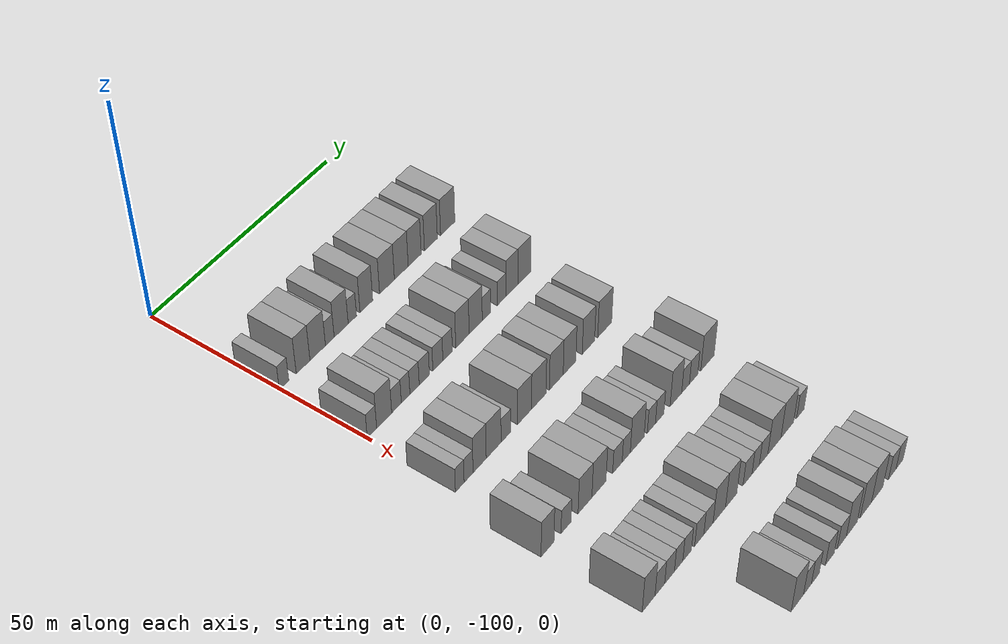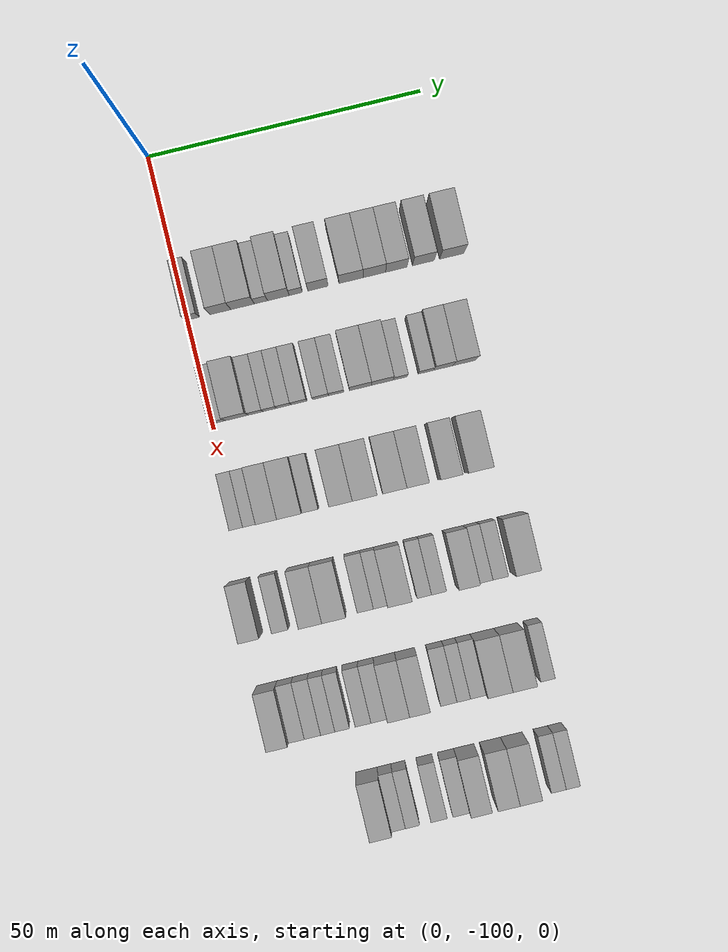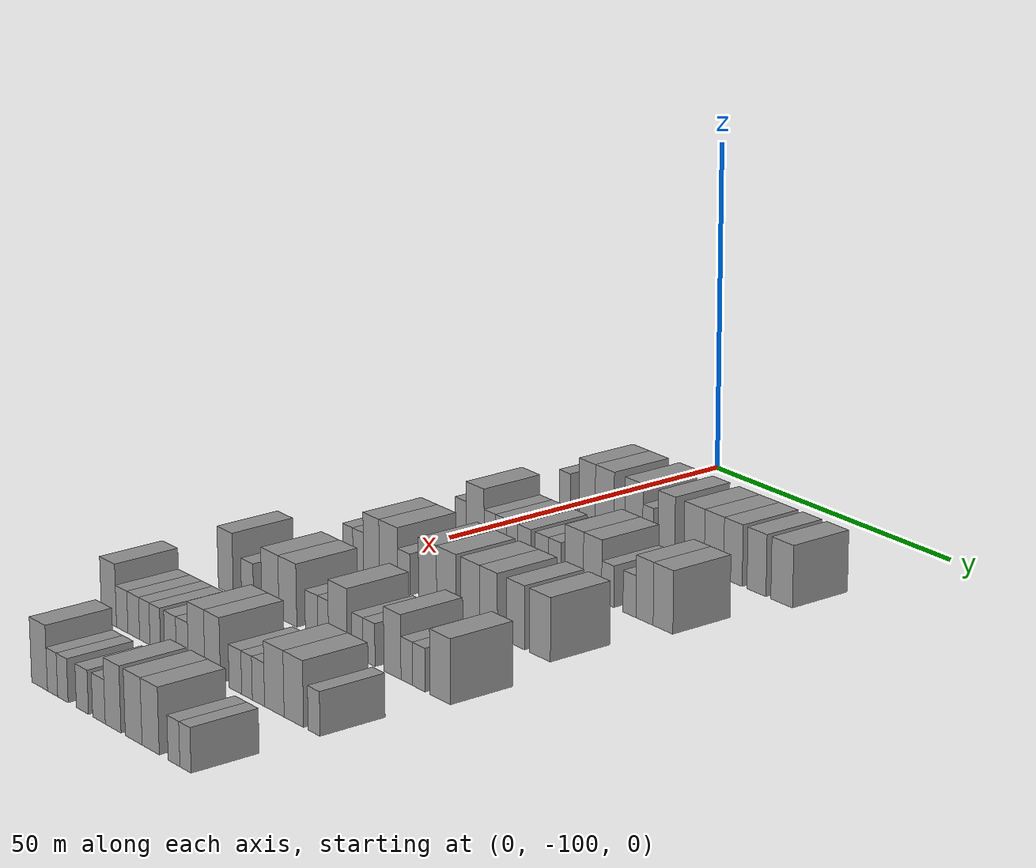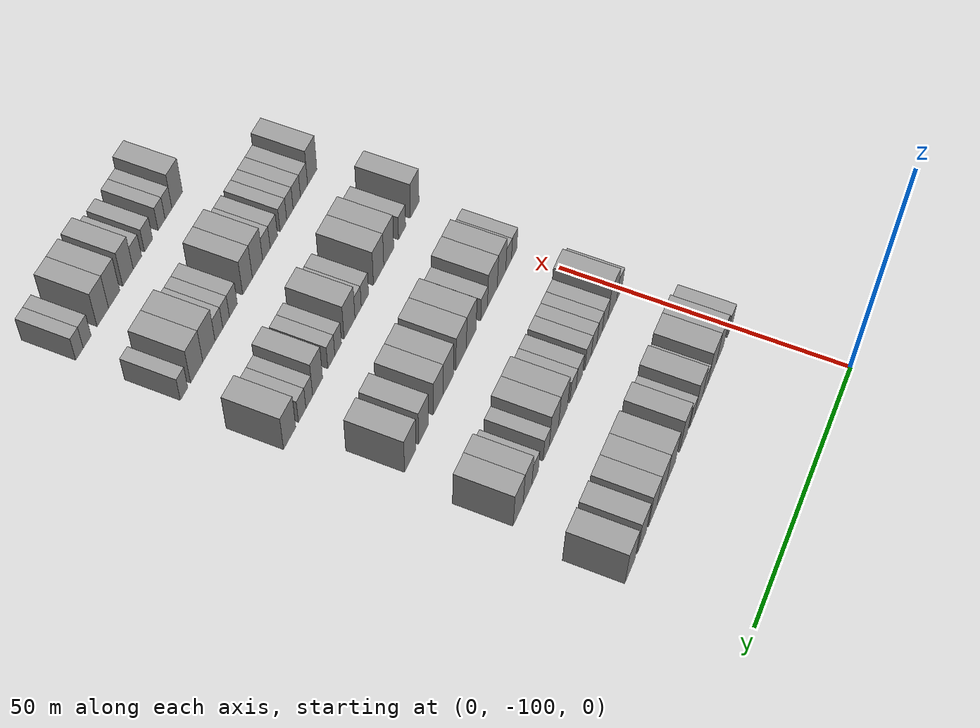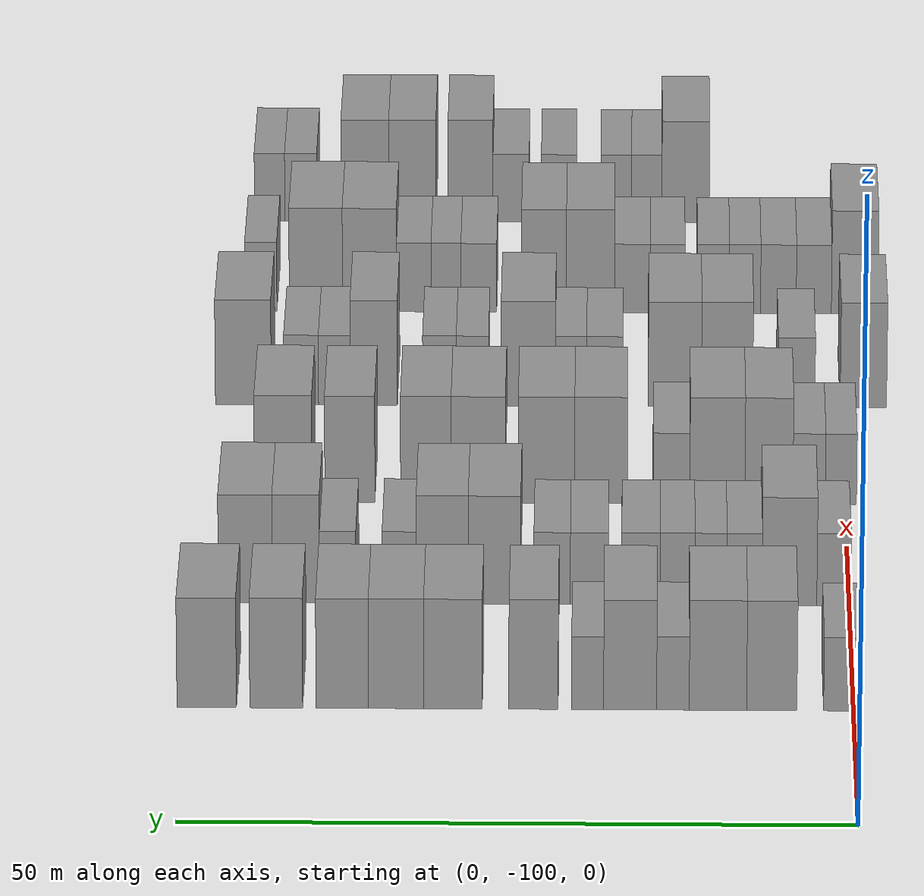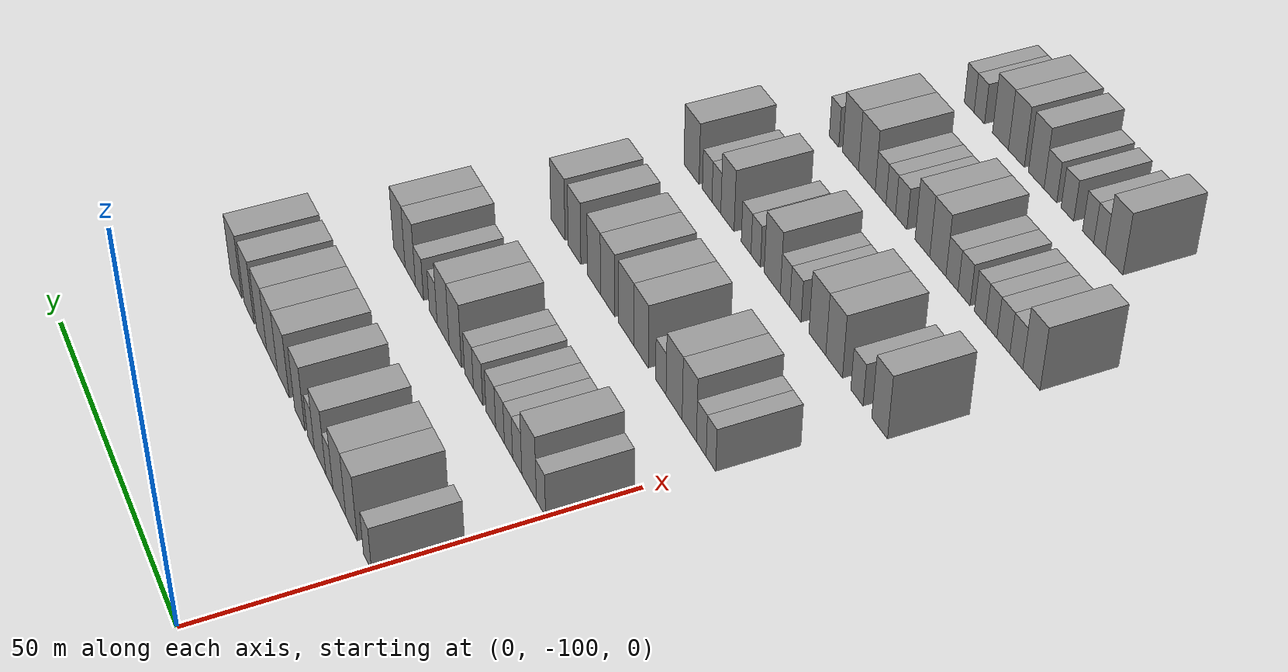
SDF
<sdf version="1.6">
 <world name="default">
  <model name="building_63">
   <static>1</static>
   <pose>25.0000 -99.0015 0 0.000000 0.000000 0.000000</pose>
   <link name="link">
    <pose>0 0 3.00 0 0 0</pose>
    <collision name="collision"><geometry><box><size>10.0000 2.5620 6.0000</size></box></geometry></collision>
    <visual name="visual">
     <cast_shadows>0</cast_shadows>
     <geometry><box><size>10.0000 2.5620 6.0000</size></box></geometry>
     <material>
      <script>
       <uri>model://grey_wall/materials/scripts</uri>
       <uri>model://grey_wall/materials/textures</uri>
       <name>vrc/grey_wall</name>
      </script>
     </material>
    </visual>
   </link>
  </model>
  <model name="building_64">
   <static>1</static>
   <pose>25.0000 -93.8390 0 0.000000 0.000000 0.000000</pose>
   <link name="link">
    <pose>0 0 4.50 0 0 0</pose>
    <collision name="collision"><geometry><box><size>10.0000 3.7630 9.0000</size></box></geometry></collision>
    <visual name="visual">
     <cast_shadows>0</cast_shadows>
     <geometry><box><size>10.0000 3.7630 9.0000</size></box></geometry>
     <material>
      <script>
       <uri>model://grey_wall/materials/scripts</uri>
       <uri>model://grey_wall/materials/textures</uri>
       <name>vrc/grey_wall</name>
      </script>
     </material>
    </visual>
   </link>
  </model>
  <model name="building_65">
   <static>1</static>
   <pose>25.0000 -89.8114 0 0.000000 0.000000 0.000000</pose>
   <link name="link">
    <pose>0 0 4.50 0 0 0</pose>
    <collision name="collision"><geometry><box><size>10.0000 4.2922 9.0000</size></box></geometry></collision>
    <visual name="visual">
     <cast_shadows>0</cast_shadows>
     <geometry><box><size>10.0000 4.2922 9.0000</size></box></geometry>
     <material>
      <script>
       <uri>model://grey_wall/materials/scripts</uri>
       <uri>model://grey_wall/materials/textures</uri>
       <name>vrc/grey_wall</name>
      </script>
     </material>
    </visual>
   </link>
  </model>
  <model name="building_66">
   <static>1</static>
   <pose>25.0000 -86.4455 0 0.000000 0.000000 0.000000</pose>
   <link name="link">
    <pose>0 0 3.00 0 0 0</pose>
    <collision name="collision"><geometry><box><size>10.0000 2.4396 6.0000</size></box></geometry></collision>
    <visual name="visual">
     <cast_shadows>0</cast_shadows>
     <geometry><box><size>10.0000 2.4396 6.0000</size></box></geometry>
     <material>
      <script>
       <uri>model://grey_wall/materials/scripts</uri>
       <uri>model://grey_wall/materials/textures</uri>
       <name>vrc/grey_wall</name>
      </script>
     </material>
    </visual>
   </link>
  </model>
  <model name="building_67">
   <static>1</static>
   <pose>25.0000 -83.2430 0 0.000000 0.000000 0.000000</pose>
   <link name="link">
    <pose>0 0 4.50 0 0 0</pose>
    <collision name="collision"><geometry><box><size>10.0000 3.9654 9.0000</size></box></geometry></collision>
    <visual name="visual">
     <cast_shadows>0</cast_shadows>
     <geometry><box><size>10.0000 3.9654 9.0000</size></box></geometry>
     <material>
      <script>
       <uri>model://grey_wall/materials/scripts</uri>
       <uri>model://grey_wall/materials/textures</uri>
       <name>vrc/grey_wall</name>
      </script>
     </material>
    </visual>
   </link>
  </model>
  <model name="building_68">
   <static>1</static>
   <pose>25.0000 -80.0603 0 0.000000 0.000000 0.000000</pose>
   <link name="link">
    <pose>0 0 3.00 0 0 0</pose>
    <collision name="collision"><geometry><box><size>10.0000 2.4002 6.0000</size></box></geometry></collision>
    <visual name="visual">
     <cast_shadows>0</cast_shadows>
     <geometry><box><size>10.0000 2.4002 6.0000</size></box></geometry>
     <material>
      <script>
       <uri>model://grey_wall/materials/scripts</uri>
       <uri>model://grey_wall/materials/textures</uri>
       <name>vrc/grey_wall</name>
      </script>
     </material>
    </visual>
   </link>
  </model>
  <model name="building_69">
   <static>1</static>
   <pose>25.0000 -76.0189 0 0.000000 0.000000 0.000000</pose>
   <link name="link">
    <pose>0 0 4.50 0 0 0</pose>
    <collision name="collision"><geometry><box><size>10.0000 3.6826 9.0000</size></box></geometry></collision>
    <visual name="visual">
     <cast_shadows>0</cast_shadows>
     <geometry><box><size>10.0000 3.6826 9.0000</size></box></geometry>
     <material>
      <script>
       <uri>model://grey_wall/materials/scripts</uri>
       <uri>model://grey_wall/materials/textures</uri>
       <name>vrc/grey_wall</name>
      </script>
     </material>
    </visual>
   </link>
  </model>
  <model name="building_70">
   <static>1</static>
   <pose>25.0000 -69.9888 0 0.000000 0.000000 0.000000</pose>
   <link name="link">
    <pose>0 0 4.50 0 0 0</pose>
    <collision name="collision"><geometry><box><size>10.0000 4.3776 9.0000</size></box></geometry></collision>
    <visual name="visual">
     <cast_shadows>0</cast_shadows>
     <geometry><box><size>10.0000 4.3776 9.0000</size></box></geometry>
     <material>
      <script>
       <uri>model://grey_wall/materials/scripts</uri>
       <uri>model://grey_wall/materials/textures</uri>
       <name>vrc/grey_wall</name>
      </script>
     </material>
    </visual>
   </link>
  </model>
  <model name="building_71">
   <static>1</static>
   <pose>25.0000 -65.7363 0 0.000000 0.000000 0.000000</pose>
   <link name="link">
    <pose>0 0 4.50 0 0 0</pose>
    <collision name="collision"><geometry><box><size>10.0000 4.1273 9.0000</size></box></geometry></collision>
    <visual name="visual">
     <cast_shadows>0</cast_shadows>
     <geometry><box><size>10.0000 4.1273 9.0000</size></box></geometry>
     <material>
      <script>
       <uri>model://grey_wall/materials/scripts</uri>
       <uri>model://grey_wall/materials/textures</uri>
       <name>vrc/grey_wall</name>
      </script>
     </material>
    </visual>
   </link>
  </model>
  <model name="building_72">
   <static>1</static>
   <pose>25.0000 -61.7075 0 0.000000 0.000000 0.000000</pose>
   <link name="link">
    <pose>0 0 4.50 0 0 0</pose>
    <collision name="collision"><geometry><box><size>10.0000 3.9303 9.0000</size></box></geometry></collision>
    <visual name="visual">
     <cast_shadows>0</cast_shadows>
     <geometry><box><size>10.0000 3.9303 9.0000</size></box></geometry>
     <material>
      <script>
       <uri>model://grey_wall/materials/scripts</uri>
       <uri>model://grey_wall/materials/textures</uri>
       <name>vrc/grey_wall</name>
      </script>
     </material>
    </visual>
   </link>
  </model>
  <model name="building_73">
   <static>1</static>
   <pose>25.0000 -56.7622 0 0.000000 0.000000 0.000000</pose>
   <link name="link">
    <pose>0 0 4.50 0 0 0</pose>
    <collision name="collision"><geometry><box><size>10.0000 3.9604 9.0000</size></box></geometry></collision>
    <visual name="visual">
     <cast_shadows>0</cast_shadows>
     <geometry><box><size>10.0000 3.9604 9.0000</size></box></geometry>
     <material>
      <script>
       <uri>model://grey_wall/materials/scripts</uri>
       <uri>model://grey_wall/materials/textures</uri>
       <name>vrc/grey_wall</name>
      </script>
     </material>
    </visual>
   </link>
  </model>
  <model name="building_74">
   <static>1</static>
   <pose>25.0000 -51.5574 0 0.000000 0.000000 0.000000</pose>
   <link name="link">
    <pose>0 0 4.50 0 0 0</pose>
    <collision name="collision"><geometry><box><size>10.0000 4.4492 9.0000</size></box></geometry></collision>
    <visual name="visual">
     <cast_shadows>0</cast_shadows>
     <geometry><box><size>10.0000 4.4492 9.0000</size></box></geometry>
     <material>
      <script>
       <uri>model://grey_wall/materials/scripts</uri>
       <uri>model://grey_wall/materials/textures</uri>
       <name>vrc/grey_wall</name>
      </script>
     </material>
    </visual>
   </link>
  </model>
  <model name="building_239">
   <static>1</static>
   <pose>44.0000 -98.7600 0 0.000000 0.000000 0.000000</pose>
   <link name="link">
    <pose>0 0 3.00 0 0 0</pose>
    <collision name="collision"><geometry><box><size>10.0000 2.5803 6.0000</size></box></geometry></collision>
    <visual name="visual">
     <cast_shadows>0</cast_shadows>
     <geometry><box><size>10.0000 2.5803 6.0000</size></box></geometry>
     <material>
      <script>
       <uri>model://grey_wall/materials/scripts</uri>
       <uri>model://grey_wall/materials/textures</uri>
       <name>vrc/grey_wall</name>
      </script>
     </material>
    </visual>
   </link>
  </model>
  <model name="building_240">
   <static>1</static>
   <pose>44.0000 -95.3832 0 0.000000 0.000000 0.000000</pose>
   <link name="link">
    <pose>0 0 4.50 0 0 0</pose>
    <collision name="collision"><geometry><box><size>10.0000 4.1734 9.0000</size></box></geometry></collision>
    <visual name="visual">
     <cast_shadows>0</cast_shadows>
     <geometry><box><size>10.0000 4.1734 9.0000</size></box></geometry>
     <material>
      <script>
       <uri>model://grey_wall/materials/scripts</uri>
       <uri>model://grey_wall/materials/textures</uri>
       <name>vrc/grey_wall</name>
      </script>
     </material>
    </visual>
   </link>
  </model>
  <model name="building_241">
   <static>1</static>
   <pose>44.0000 -91.9463 0 0.000000 0.000000 0.000000</pose>
   <link name="link">
    <pose>0 0 3.00 0 0 0</pose>
    <collision name="collision"><geometry><box><size>10.0000 2.7004 6.0000</size></box></geometry></collision>
    <visual name="visual">
     <cast_shadows>0</cast_shadows>
     <geometry><box><size>10.0000 2.7004 6.0000</size></box></geometry>
     <material>
      <script>
       <uri>model://grey_wall/materials/scripts</uri>
       <uri>model://grey_wall/materials/textures</uri>
       <name>vrc/grey_wall</name>
      </script>
     </material>
    </visual>
   </link>
  </model>
  <model name="building_242">
   <static>1</static>
   <pose>44.0000 -89.3779 0 0.000000 0.000000 0.000000</pose>
   <link name="link">
    <pose>0 0 3.00 0 0 0</pose>
    <collision name="collision"><geometry><box><size>10.0000 2.4364 6.0000</size></box></geometry></collision>
    <visual name="visual">
     <cast_shadows>0</cast_shadows>
     <geometry><box><size>10.0000 2.4364 6.0000</size></box></geometry>
     <material>
      <script>
       <uri>model://grey_wall/materials/scripts</uri>
       <uri>model://grey_wall/materials/textures</uri>
       <name>vrc/grey_wall</name>
      </script>
     </material>
    </visual>
   </link>
  </model>
  <model name="building_243">
   <static>1</static>
   <pose>44.0000 -86.8369 0 0.000000 0.000000 0.000000</pose>
   <link name="link">
    <pose>0 0 3.00 0 0 0</pose>
    <collision name="collision"><geometry><box><size>10.0000 2.6456 6.0000</size></box></geometry></collision>
    <visual name="visual">
     <cast_shadows>0</cast_shadows>
     <geometry><box><size>10.0000 2.6456 6.0000</size></box></geometry>
     <material>
      <script>
       <uri>model://grey_wall/materials/scripts</uri>
       <uri>model://grey_wall/materials/textures</uri>
       <name>vrc/grey_wall</name>
      </script>
     </material>
    </visual>
   </link>
  </model>
  <model name="building_244">
   <static>1</static>
   <pose>44.0000 -84.0480 0 0.000000 0.000000 0.000000</pose>
   <link name="link">
    <pose>0 0 3.00 0 0 0</pose>
    <collision name="collision"><geometry><box><size>10.0000 2.9322 6.0000</size></box></geometry></collision>
    <visual name="visual">
     <cast_shadows>0</cast_shadows>
     <geometry><box><size>10.0000 2.9322 6.0000</size></box></geometry>
     <material>
      <script>
       <uri>model://grey_wall/materials/scripts</uri>
       <uri>model://grey_wall/materials/textures</uri>
       <name>vrc/grey_wall</name>
      </script>
     </material>
    </visual>
   </link>
  </model>
  <model name="building_245">
   <static>1</static>
   <pose>44.0000 -80.1225 0 0.000000 0.000000 0.000000</pose>
   <link name="link">
    <pose>0 0 3.00 0 0 0</pose>
    <collision name="collision"><geometry><box><size>10.0000 2.9187 6.0000</size></box></geometry></collision>
    <visual name="visual">
     <cast_shadows>0</cast_shadows>
     <geometry><box><size>10.0000 2.9187 6.0000</size></box></geometry>
     <material>
      <script>
       <uri>model://grey_wall/materials/scripts</uri>
       <uri>model://grey_wall/materials/textures</uri>
       <name>vrc/grey_wall</name>
      </script>
     </material>
    </visual>
   </link>
  </model>
  <model name="building_246">
   <static>1</static>
   <pose>44.0000 -77.2714 0 0.000000 0.000000 0.000000</pose>
   <link name="link">
    <pose>0 0 3.00 0 0 0</pose>
    <collision name="collision"><geometry><box><size>10.0000 2.7835 6.0000</size></box></geometry></collision>
    <visual name="visual">
     <cast_shadows>0</cast_shadows>
     <geometry><box><size>10.0000 2.7835 6.0000</size></box></geometry>
     <material>
      <script>
       <uri>model://grey_wall/materials/scripts</uri>
       <uri>model://grey_wall/materials/textures</uri>
       <name>vrc/grey_wall</name>
      </script>
     </material>
    </visual>
   </link>
  </model>
  <model name="building_247">
   <static>1</static>
   <pose>44.0000 -72.8802 0 0.000000 0.000000 0.000000</pose>
   <link name="link">
    <pose>0 0 4.50 0 0 0</pose>
    <collision name="collision"><geometry><box><size>10.0000 3.9989 9.0000</size></box></geometry></collision>
    <visual name="visual">
     <cast_shadows>0</cast_shadows>
     <geometry><box><size>10.0000 3.9989 9.0000</size></box></geometry>
     <material>
      <script>
       <uri>model://grey_wall/materials/scripts</uri>
       <uri>model://grey_wall/materials/textures</uri>
       <name>vrc/grey_wall</name>
      </script>
     </material>
    </visual>
   </link>
  </model>
  <model name="building_248">
   <static>1</static>
   <pose>44.0000 -68.8978 0 0.000000 0.000000 0.000000</pose>
   <link name="link">
    <pose>0 0 4.50 0 0 0</pose>
    <collision name="collision"><geometry><box><size>10.0000 3.9660 9.0000</size></box></geometry></collision>
    <visual name="visual">
     <cast_shadows>0</cast_shadows>
     <geometry><box><size>10.0000 3.9660 9.0000</size></box></geometry>
     <material>
      <script>
       <uri>model://grey_wall/materials/scripts</uri>
       <uri>model://grey_wall/materials/textures</uri>
       <name>vrc/grey_wall</name>
      </script>
     </material>
    </visual>
   </link>
  </model>
  <model name="building_249">
   <static>1</static>
   <pose>44.0000 -65.6132 0 0.000000 0.000000 0.000000</pose>
   <link name="link">
    <pose>0 0 3.00 0 0 0</pose>
    <collision name="collision"><geometry><box><size>10.0000 2.6032 6.0000</size></box></geometry></collision>
    <visual name="visual">
     <cast_shadows>0</cast_shadows>
     <geometry><box><size>10.0000 2.6032 6.0000</size></box></geometry>
     <material>
      <script>
       <uri>model://grey_wall/materials/scripts</uri>
       <uri>model://grey_wall/materials/textures</uri>
       <name>vrc/grey_wall</name>
      </script>
     </material>
    </visual>
   </link>
  </model>
  <model name="building_250">
   <static>1</static>
   <pose>44.0000 -60.9250 0 0.000000 0.000000 0.000000</pose>
   <link name="link">
    <pose>0 0 3.00 0 0 0</pose>
    <collision name="collision"><geometry><box><size>10.0000 2.7731 6.0000</size></box></geometry></collision>
    <visual name="visual">
     <cast_shadows>0</cast_shadows>
     <geometry><box><size>10.0000 2.7731 6.0000</size></box></geometry>
     <material>
      <script>
       <uri>model://grey_wall/materials/scripts</uri>
       <uri>model://grey_wall/materials/textures</uri>
       <name>vrc/grey_wall</name>
      </script>
     </material>
    </visual>
   </link>
  </model>
  <model name="building_251">
   <static>1</static>
   <pose>44.0000 -57.7348 0 0.000000 0.000000 0.000000</pose>
   <link name="link">
    <pose>0 0 4.50 0 0 0</pose>
    <collision name="collision"><geometry><box><size>10.0000 3.6072 9.0000</size></box></geometry></collision>
    <visual name="visual">
     <cast_shadows>0</cast_shadows>
     <geometry><box><size>10.0000 3.6072 9.0000</size></box></geometry>
     <material>
      <script>
       <uri>model://grey_wall/materials/scripts</uri>
       <uri>model://grey_wall/materials/textures</uri>
       <name>vrc/grey_wall</name>
      </script>
     </material>
    </visual>
   </link>
  </model>
  <model name="building_252">
   <static>1</static>
   <pose>44.0000 -53.8729 0 0.000000 0.000000 0.000000</pose>
   <link name="link">
    <pose>0 0 4.50 0 0 0</pose>
    <collision name="collision"><geometry><box><size>10.0000 4.1167 9.0000</size></box></geometry></collision>
    <visual name="visual">
     <cast_shadows>0</cast_shadows>
     <geometry><box><size>10.0000 4.1167 9.0000</size></box></geometry>
     <material>
      <script>
       <uri>model://grey_wall/materials/scripts</uri>
       <uri>model://grey_wall/materials/textures</uri>
       <name>vrc/grey_wall</name>
      </script>
     </material>
    </visual>
   </link>
  </model>
  <model name="building_420">
   <static>1</static>
   <pose>63.0000 -99.6069 0 0.000000 0.000000 0.000000</pose>
   <link name="link">
    <pose>0 0 3.00 0 0 0</pose>
    <collision name="collision"><geometry><box><size>10.0000 2.4198 6.0000</size></box></geometry></collision>
    <visual name="visual">
     <cast_shadows>0</cast_shadows>
     <geometry><box><size>10.0000 2.4198 6.0000</size></box></geometry>
     <material>
      <script>
       <uri>model://grey_wall/materials/scripts</uri>
       <uri>model://grey_wall/materials/textures</uri>
       <name>vrc/grey_wall</name>
      </script>
     </material>
    </visual>
   </link>
  </model>
  <model name="building_421">
   <static>1</static>
   <pose>63.0000 -97.1346 0 0.000000 0.000000 0.000000</pose>
   <link name="link">
    <pose>0 0 3.00 0 0 0</pose>
    <collision name="collision"><geometry><box><size>10.0000 2.5248 6.0000</size></box></geometry></collision>
    <visual name="visual">
     <cast_shadows>0</cast_shadows>
     <geometry><box><size>10.0000 2.5248 6.0000</size></box></geometry>
     <material>
      <script>
       <uri>model://grey_wall/materials/scripts</uri>
       <uri>model://grey_wall/materials/textures</uri>
       <name>vrc/grey_wall</name>
      </script>
     </material>
    </visual>
   </link>
  </model>
  <model name="building_422">
   <static>1</static>
   <pose>63.0000 -94.0035 0 0.000000 0.000000 0.000000</pose>
   <link name="link">
    <pose>0 0 4.50 0 0 0</pose>
    <collision name="collision"><geometry><box><size>10.0000 3.7374 9.0000</size></box></geometry></collision>
    <visual name="visual">
     <cast_shadows>0</cast_shadows>
     <geometry><box><size>10.0000 3.7374 9.0000</size></box></geometry>
     <material>
      <script>
       <uri>model://grey_wall/materials/scripts</uri>
       <uri>model://grey_wall/materials/textures</uri>
       <name>vrc/grey_wall</name>
      </script>
     </material>
    </visual>
   </link>
  </model>
  <model name="building_423">
   <static>1</static>
   <pose>63.0000 -89.9951 0 0.000000 0.000000 0.000000</pose>
   <link name="link">
    <pose>0 0 4.50 0 0 0</pose>
    <collision name="collision"><geometry><box><size>10.0000 4.2793 9.0000</size></box></geometry></collision>
    <visual name="visual">
     <cast_shadows>0</cast_shadows>
     <geometry><box><size>10.0000 4.2793 9.0000</size></box></geometry>
     <material>
      <script>
       <uri>model://grey_wall/materials/scripts</uri>
       <uri>model://grey_wall/materials/textures</uri>
       <name>vrc/grey_wall</name>
      </script>
     </material>
    </visual>
   </link>
  </model>
  <model name="building_424">
   <static>1</static>
   <pose>63.0000 -86.4323 0 0.000000 0.000000 0.000000</pose>
   <link name="link">
    <pose>0 0 3.00 0 0 0</pose>
    <collision name="collision"><geometry><box><size>10.0000 2.8464 6.0000</size></box></geometry></collision>
    <visual name="visual">
     <cast_shadows>0</cast_shadows>
     <geometry><box><size>10.0000 2.8464 6.0000</size></box></geometry>
     <material>
      <script>
       <uri>model://grey_wall/materials/scripts</uri>
       <uri>model://grey_wall/materials/textures</uri>
       <name>vrc/grey_wall</name>
      </script>
     </material>
    </visual>
   </link>
  </model>
  <model name="building_425">
   <static>1</static>
   <pose>63.0000 -80.9505 0 0.000000 0.000000 0.000000</pose>
   <link name="link">
    <pose>0 0 4.50 0 0 0</pose>
    <collision name="collision"><geometry><box><size>10.0000 4.1171 9.0000</size></box></geometry></collision>
    <visual name="visual">
     <cast_shadows>0</cast_shadows>
     <geometry><box><size>10.0000 4.1171 9.0000</size></box></geometry>
     <material>
      <script>
       <uri>model://grey_wall/materials/scripts</uri>
       <uri>model://grey_wall/materials/textures</uri>
       <name>vrc/grey_wall</name>
      </script>
     </material>
    </visual>
   </link>
  </model>
  <model name="building_426">
   <static>1</static>
   <pose>63.0000 -76.7023 0 0.000000 0.000000 0.000000</pose>
   <link name="link">
    <pose>0 0 4.50 0 0 0</pose>
    <collision name="collision"><geometry><box><size>10.0000 4.3794 9.0000</size></box></geometry></collision>
    <visual name="visual">
     <cast_shadows>0</cast_shadows>
     <geometry><box><size>10.0000 4.3794 9.0000</size></box></geometry>
     <material>
      <script>
       <uri>model://grey_wall/materials/scripts</uri>
       <uri>model://grey_wall/materials/textures</uri>
       <name>vrc/grey_wall</name>
      </script>
     </material>
    </visual>
   </link>
  </model>
  <model name="building_427">
   <static>1</static>
   <pose>63.0000 -71.4028 0 0.000000 0.000000 0.000000</pose>
   <link name="link">
    <pose>0 0 4.50 0 0 0</pose>
    <collision name="collision"><geometry><box><size>10.0000 4.2195 9.0000</size></box></geometry></collision>
    <visual name="visual">
     <cast_shadows>0</cast_shadows>
     <geometry><box><size>10.0000 4.2195 9.0000</size></box></geometry>
     <material>
      <script>
       <uri>model://grey_wall/materials/scripts</uri>
       <uri>model://grey_wall/materials/textures</uri>
       <name>vrc/grey_wall</name>
      </script>
     </material>
    </visual>
   </link>
  </model>
  <model name="building_428">
   <static>1</static>
   <pose>63.0000 -67.3273 0 0.000000 0.000000 0.000000</pose>
   <link name="link">
    <pose>0 0 4.50 0 0 0</pose>
    <collision name="collision"><geometry><box><size>10.0000 3.9316 9.0000</size></box></geometry></collision>
    <visual name="visual">
     <cast_shadows>0</cast_shadows>
     <geometry><box><size>10.0000 3.9316 9.0000</size></box></geometry>
     <material>
      <script>
       <uri>model://grey_wall/materials/scripts</uri>
       <uri>model://grey_wall/materials/textures</uri>
       <name>vrc/grey_wall</name>
      </script>
     </material>
    </visual>
   </link>
  </model>
  <model name="building_429">
   <static>1</static>
   <pose>63.0000 -61.4141 0 0.000000 0.000000 0.000000</pose>
   <link name="link">
    <pose>0 0 4.50 0 0 0</pose>
    <collision name="collision"><geometry><box><size>10.0000 3.8948 9.0000</size></box></geometry></collision>
    <visual name="visual">
     <cast_shadows>0</cast_shadows>
     <geometry><box><size>10.0000 3.8948 9.0000</size></box></geometry>
     <material>
      <script>
       <uri>model://grey_wall/materials/scripts</uri>
       <uri>model://grey_wall/materials/textures</uri>
       <name>vrc/grey_wall</name>
      </script>
     </material>
    </visual>
   </link>
  </model>
  <model name="building_430">
   <static>1</static>
   <pose>63.0000 -56.2300 0 0.000000 0.000000 0.000000</pose>
   <link name="link">
    <pose>0 0 4.50 0 0 0</pose>
    <collision name="collision"><geometry><box><size>10.0000 4.4734 9.0000</size></box></geometry></collision>
    <visual name="visual">
     <cast_shadows>0</cast_shadows>
     <geometry><box><size>10.0000 4.4734 9.0000</size></box></geometry>
     <material>
      <script>
       <uri>model://grey_wall/materials/scripts</uri>
       <uri>model://grey_wall/materials/textures</uri>
       <name>vrc/grey_wall</name>
      </script>
     </material>
    </visual>
   </link>
  </model>
  <model name="building_586">
   <static>1</static>
   <pose>82.0000 -101.6894 0 0.000000 0.000000 0.000000</pose>
   <link name="link">
    <pose>0 0 4.50 0 0 0</pose>
    <collision name="collision"><geometry><box><size>10.0000 3.6727 9.0000</size></box></geometry></collision>
    <visual name="visual">
     <cast_shadows>0</cast_shadows>
     <geometry><box><size>10.0000 3.6727 9.0000</size></box></geometry>
     <material>
      <script>
       <uri>model://grey_wall/materials/scripts</uri>
       <uri>model://grey_wall/materials/textures</uri>
       <name>vrc/grey_wall</name>
      </script>
     </material>
    </visual>
   </link>
  </model>
  <model name="building_587">
   <static>1</static>
   <pose>82.0000 -96.3872 0 0.000000 0.000000 0.000000</pose>
   <link name="link">
    <pose>0 0 3.00 0 0 0</pose>
    <collision name="collision"><geometry><box><size>10.0000 2.9318 6.0000</size></box></geometry></collision>
    <visual name="visual">
     <cast_shadows>0</cast_shadows>
     <geometry><box><size>10.0000 2.9318 6.0000</size></box></geometry>
     <material>
      <script>
       <uri>model://grey_wall/materials/scripts</uri>
       <uri>model://grey_wall/materials/textures</uri>
       <name>vrc/grey_wall</name>
      </script>
     </material>
    </visual>
   </link>
  </model>
  <model name="building_588">
   <static>1</static>
   <pose>82.0000 -90.8822 0 0.000000 0.000000 0.000000</pose>
   <link name="link">
    <pose>0 0 4.50 0 0 0</pose>
    <collision name="collision"><geometry><box><size>10.0000 4.0781 9.0000</size></box></geometry></collision>
    <visual name="visual">
     <cast_shadows>0</cast_shadows>
     <geometry><box><size>10.0000 4.0781 9.0000</size></box></geometry>
     <material>
      <script>
       <uri>model://grey_wall/materials/scripts</uri>
       <uri>model://grey_wall/materials/textures</uri>
       <name>vrc/grey_wall</name>
      </script>
     </material>
    </visual>
   </link>
  </model>
  <model name="building_589">
   <static>1</static>
   <pose>82.0000 -86.7405 0 0.000000 0.000000 0.000000</pose>
   <link name="link">
    <pose>0 0 4.50 0 0 0</pose>
    <collision name="collision"><geometry><box><size>10.0000 4.2053 9.0000</size></box></geometry></collision>
    <visual name="visual">
     <cast_shadows>0</cast_shadows>
     <geometry><box><size>10.0000 4.2053 9.0000</size></box></geometry>
     <material>
      <script>
       <uri>model://grey_wall/materials/scripts</uri>
       <uri>model://grey_wall/materials/textures</uri>
       <name>vrc/grey_wall</name>
      </script>
     </material>
    </visual>
   </link>
  </model>
  <model name="building_590">
   <static>1</static>
   <pose>82.0000 -81.1936 0 0.000000 0.000000 0.000000</pose>
   <link name="link">
    <pose>0 0 3.00 0 0 0</pose>
    <collision name="collision"><geometry><box><size>10.0000 2.8884 6.0000</size></box></geometry></collision>
    <visual name="visual">
     <cast_shadows>0</cast_shadows>
     <geometry><box><size>10.0000 2.8884 6.0000</size></box></geometry>
     <material>
      <script>
       <uri>model://grey_wall/materials/scripts</uri>
       <uri>model://grey_wall/materials/textures</uri>
       <name>vrc/grey_wall</name>
      </script>
     </material>
    </visual>
   </link>
  </model>
  <model name="building_591">
   <static>1</static>
   <pose>82.0000 -78.5087 0 0.000000 0.000000 0.000000</pose>
   <link name="link">
    <pose>0 0 3.00 0 0 0</pose>
    <collision name="collision"><geometry><box><size>10.0000 2.4815 6.0000</size></box></geometry></collision>
    <visual name="visual">
     <cast_shadows>0</cast_shadows>
     <geometry><box><size>10.0000 2.4815 6.0000</size></box></geometry>
     <material>
      <script>
       <uri>model://grey_wall/materials/scripts</uri>
       <uri>model://grey_wall/materials/textures</uri>
       <name>vrc/grey_wall</name>
      </script>
     </material>
    </visual>
   </link>
  </model>
  <model name="building_592">
   <static>1</static>
   <pose>82.0000 -75.1218 0 0.000000 0.000000 0.000000</pose>
   <link name="link">
    <pose>0 0 4.50 0 0 0</pose>
    <collision name="collision"><geometry><box><size>10.0000 4.2922 9.0000</size></box></geometry></collision>
    <visual name="visual">
     <cast_shadows>0</cast_shadows>
     <geometry><box><size>10.0000 4.2922 9.0000</size></box></geometry>
     <material>
      <script>
       <uri>model://grey_wall/materials/scripts</uri>
       <uri>model://grey_wall/materials/textures</uri>
       <name>vrc/grey_wall</name>
      </script>
     </material>
    </visual>
   </link>
  </model>
  <model name="building_593">
   <static>1</static>
   <pose>82.0000 -70.6965 0 0.000000 0.000000 0.000000</pose>
   <link name="link">
    <pose>0 0 3.00 0 0 0</pose>
    <collision name="collision"><geometry><box><size>10.0000 2.5584 6.0000</size></box></geometry></collision>
    <visual name="visual">
     <cast_shadows>0</cast_shadows>
     <geometry><box><size>10.0000 2.5584 6.0000</size></box></geometry>
     <material>
      <script>
       <uri>model://grey_wall/materials/scripts</uri>
       <uri>model://grey_wall/materials/textures</uri>
       <name>vrc/grey_wall</name>
      </script>
     </material>
    </visual>
   </link>
  </model>
  <model name="building_594">
   <static>1</static>
   <pose>82.0000 -68.0846 0 0.000000 0.000000 0.000000</pose>
   <link name="link">
    <pose>0 0 3.00 0 0 0</pose>
    <collision name="collision"><geometry><box><size>10.0000 2.6655 6.0000</size></box></geometry></collision>
    <visual name="visual">
     <cast_shadows>0</cast_shadows>
     <geometry><box><size>10.0000 2.6655 6.0000</size></box></geometry>
     <material>
      <script>
       <uri>model://grey_wall/materials/scripts</uri>
       <uri>model://grey_wall/materials/textures</uri>
       <name>vrc/grey_wall</name>
      </script>
     </material>
    </visual>
   </link>
  </model>
  <model name="building_595">
   <static>1</static>
   <pose>82.0000 -62.8840 0 0.000000 0.000000 0.000000</pose>
   <link name="link">
    <pose>0 0 4.50 0 0 0</pose>
    <collision name="collision"><geometry><box><size>10.0000 3.7358 9.0000</size></box></geometry></collision>
    <visual name="visual">
     <cast_shadows>0</cast_shadows>
     <geometry><box><size>10.0000 3.7358 9.0000</size></box></geometry>
     <material>
      <script>
       <uri>model://grey_wall/materials/scripts</uri>
       <uri>model://grey_wall/materials/textures</uri>
       <name>vrc/grey_wall</name>
      </script>
     </material>
    </visual>
   </link>
  </model>
  <model name="building_596">
   <static>1</static>
   <pose>82.0000 -59.7561 0 0.000000 0.000000 0.000000</pose>
   <link name="link">
    <pose>0 0 3.00 0 0 0</pose>
    <collision name="collision"><geometry><box><size>10.0000 2.5199 6.0000</size></box></geometry></collision>
    <visual name="visual">
     <cast_shadows>0</cast_shadows>
     <geometry><box><size>10.0000 2.5199 6.0000</size></box></geometry>
     <material>
      <script>
       <uri>model://grey_wall/materials/scripts</uri>
       <uri>model://grey_wall/materials/textures</uri>
       <name>vrc/grey_wall</name>
      </script>
     </material>
    </visual>
   </link>
  </model>
  <model name="building_597">
   <static>1</static>
   <pose>82.0000 -57.1208 0 0.000000 0.000000 0.000000</pose>
   <link name="link">
    <pose>0 0 3.00 0 0 0</pose>
    <collision name="collision"><geometry><box><size>10.0000 2.7508 6.0000</size></box></geometry></collision>
    <visual name="visual">
     <cast_shadows>0</cast_shadows>
     <geometry><box><size>10.0000 2.7508 6.0000</size></box></geometry>
     <material>
      <script>
       <uri>model://grey_wall/materials/scripts</uri>
       <uri>model://grey_wall/materials/textures</uri>
       <name>vrc/grey_wall</name>
      </script>
     </material>
    </visual>
   </link>
  </model>
  <model name="building_598">
   <static>1</static>
   <pose>82.0000 -52.5297 0 0.000000 0.000000 0.000000</pose>
   <link name="link">
    <pose>0 0 4.50 0 0 0</pose>
    <collision name="collision"><geometry><box><size>10.0000 4.4313 9.0000</size></box></geometry></collision>
    <visual name="visual">
     <cast_shadows>0</cast_shadows>
     <geometry><box><size>10.0000 4.4313 9.0000</size></box></geometry>
     <material>
      <script>
       <uri>model://grey_wall/materials/scripts</uri>
       <uri>model://grey_wall/materials/textures</uri>
       <name>vrc/grey_wall</name>
      </script>
     </material>
    </visual>
   </link>
  </model>
  <model name="building_768">
   <static>1</static>
   <pose>101.0000 -101.3127 0 0.000000 0.000000 0.000000</pose>
   <link name="link">
    <pose>0 0 4.50 0 0 0</pose>
    <collision name="collision"><geometry><box><size>10.0000 3.7408 9.0000</size></box></geometry></collision>
    <visual name="visual">
     <cast_shadows>0</cast_shadows>
     <geometry><box><size>10.0000 3.7408 9.0000</size></box></geometry>
     <material>
      <script>
       <uri>model://grey_wall/materials/scripts</uri>
       <uri>model://grey_wall/materials/textures</uri>
       <name>vrc/grey_wall</name>
      </script>
     </material>
    </visual>
   </link>
  </model>
  <model name="building_769">
   <static>1</static>
   <pose>101.0000 -98.0214 0 0.000000 0.000000 0.000000</pose>
   <link name="link">
    <pose>0 0 3.00 0 0 0</pose>
    <collision name="collision"><geometry><box><size>10.0000 2.8418 6.0000</size></box></geometry></collision>
    <visual name="visual">
     <cast_shadows>0</cast_shadows>
     <geometry><box><size>10.0000 2.8418 6.0000</size></box></geometry>
     <material>
      <script>
       <uri>model://grey_wall/materials/scripts</uri>
       <uri>model://grey_wall/materials/textures</uri>
       <name>vrc/grey_wall</name>
      </script>
     </material>
    </visual>
   </link>
  </model>
  <model name="building_770">
   <static>1</static>
   <pose>101.0000 -95.1584 0 0.000000 0.000000 0.000000</pose>
   <link name="link">
    <pose>0 0 3.00 0 0 0</pose>
    <collision name="collision"><geometry><box><size>10.0000 2.8843 6.0000</size></box></geometry></collision>
    <visual name="visual">
     <cast_shadows>0</cast_shadows>
     <geometry><box><size>10.0000 2.8843 6.0000</size></box></geometry>
     <material>
      <script>
       <uri>model://grey_wall/materials/scripts</uri>
       <uri>model://grey_wall/materials/textures</uri>
       <name>vrc/grey_wall</name>
      </script>
     </material>
    </visual>
   </link>
  </model>
  <model name="building_771">
   <static>1</static>
   <pose>101.0000 -92.4525 0 0.000000 0.000000 0.000000</pose>
   <link name="link">
    <pose>0 0 3.00 0 0 0</pose>
    <collision name="collision"><geometry><box><size>10.0000 2.5275 6.0000</size></box></geometry></collision>
    <visual name="visual">
     <cast_shadows>0</cast_shadows>
     <geometry><box><size>10.0000 2.5275 6.0000</size></box></geometry>
     <material>
      <script>
       <uri>model://grey_wall/materials/scripts</uri>
       <uri>model://grey_wall/materials/textures</uri>
       <name>vrc/grey_wall</name>
      </script>
     </material>
    </visual>
   </link>
  </model>
  <model name="building_772">
   <static>1</static>
   <pose>101.0000 -89.8961 0 0.000000 0.000000 0.000000</pose>
   <link name="link">
    <pose>0 0 3.00 0 0 0</pose>
    <collision name="collision"><geometry><box><size>10.0000 2.5853 6.0000</size></box></geometry></collision>
    <visual name="visual">
     <cast_shadows>0</cast_shadows>
     <geometry><box><size>10.0000 2.5853 6.0000</size></box></geometry>
     <material>
      <script>
       <uri>model://grey_wall/materials/scripts</uri>
       <uri>model://grey_wall/materials/textures</uri>
       <name>vrc/grey_wall</name>
      </script>
     </material>
    </visual>
   </link>
  </model>
  <model name="building_773">
   <static>1</static>
   <pose>101.0000 -86.1983 0 0.000000 0.000000 0.000000</pose>
   <link name="link">
    <pose>0 0 3.00 0 0 0</pose>
    <collision name="collision"><geometry><box><size>10.0000 2.8104 6.0000</size></box></geometry></collision>
    <visual name="visual">
     <cast_shadows>0</cast_shadows>
     <geometry><box><size>10.0000 2.8104 6.0000</size></box></geometry>
     <material>
      <script>
       <uri>model://grey_wall/materials/scripts</uri>
       <uri>model://grey_wall/materials/textures</uri>
       <name>vrc/grey_wall</name>
      </script>
     </material>
    </visual>
   </link>
  </model>
  <model name="building_774">
   <static>1</static>
   <pose>101.0000 -83.3562 0 0.000000 0.000000 0.000000</pose>
   <link name="link">
    <pose>0 0 3.00 0 0 0</pose>
    <collision name="collision"><geometry><box><size>10.0000 2.8738 6.0000</size></box></geometry></collision>
    <visual name="visual">
     <cast_shadows>0</cast_shadows>
     <geometry><box><size>10.0000 2.8738 6.0000</size></box></geometry>
     <material>
      <script>
       <uri>model://grey_wall/materials/scripts</uri>
       <uri>model://grey_wall/materials/textures</uri>
       <name>vrc/grey_wall</name>
      </script>
     </material>
    </visual>
   </link>
  </model>
  <model name="building_775">
   <static>1</static>
   <pose>101.0000 -79.9763 0 0.000000 0.000000 0.000000</pose>
   <link name="link">
    <pose>0 0 4.50 0 0 0</pose>
    <collision name="collision"><geometry><box><size>10.0000 3.8860 9.0000</size></box></geometry></collision>
    <visual name="visual">
     <cast_shadows>0</cast_shadows>
     <geometry><box><size>10.0000 3.8860 9.0000</size></box></geometry>
     <material>
      <script>
       <uri>model://grey_wall/materials/scripts</uri>
       <uri>model://grey_wall/materials/textures</uri>
       <name>vrc/grey_wall</name>
      </script>
     </material>
    </visual>
   </link>
  </model>
  <model name="building_776">
   <static>1</static>
   <pose>101.0000 -76.2238 0 0.000000 0.000000 0.000000</pose>
   <link name="link">
    <pose>0 0 4.50 0 0 0</pose>
    <collision name="collision"><geometry><box><size>10.0000 3.6189 9.0000</size></box></geometry></collision>
    <visual name="visual">
     <cast_shadows>0</cast_shadows>
     <geometry><box><size>10.0000 3.6189 9.0000</size></box></geometry>
     <material>
      <script>
       <uri>model://grey_wall/materials/scripts</uri>
       <uri>model://grey_wall/materials/textures</uri>
       <name>vrc/grey_wall</name>
      </script>
     </material>
    </visual>
   </link>
  </model>
  <model name="building_777">
   <static>1</static>
   <pose>101.0000 -70.9666 0 0.000000 0.000000 0.000000</pose>
   <link name="link">
    <pose>0 0 3.00 0 0 0</pose>
    <collision name="collision"><geometry><box><size>10.0000 2.8955 6.0000</size></box></geometry></collision>
    <visual name="visual">
     <cast_shadows>0</cast_shadows>
     <geometry><box><size>10.0000 2.8955 6.0000</size></box></geometry>
     <material>
      <script>
       <uri>model://grey_wall/materials/scripts</uri>
       <uri>model://grey_wall/materials/textures</uri>
       <name>vrc/grey_wall</name>
      </script>
     </material>
    </visual>
   </link>
  </model>
  <model name="building_778">
   <static>1</static>
   <pose>101.0000 -68.3120 0 0.000000 0.000000 0.000000</pose>
   <link name="link">
    <pose>0 0 3.00 0 0 0</pose>
    <collision name="collision"><geometry><box><size>10.0000 2.4139 6.0000</size></box></geometry></collision>
    <visual name="visual">
     <cast_shadows>0</cast_shadows>
     <geometry><box><size>10.0000 2.4139 6.0000</size></box></geometry>
     <material>
      <script>
       <uri>model://grey_wall/materials/scripts</uri>
       <uri>model://grey_wall/materials/textures</uri>
       <name>vrc/grey_wall</name>
      </script>
     </material>
    </visual>
   </link>
  </model>
  <model name="building_779">
   <static>1</static>
   <pose>101.0000 -65.7157 0 0.000000 0.000000 0.000000</pose>
   <link name="link">
    <pose>0 0 3.00 0 0 0</pose>
    <collision name="collision"><geometry><box><size>10.0000 2.7787 6.0000</size></box></geometry></collision>
    <visual name="visual">
     <cast_shadows>0</cast_shadows>
     <geometry><box><size>10.0000 2.7787 6.0000</size></box></geometry>
     <material>
      <script>
       <uri>model://grey_wall/materials/scripts</uri>
       <uri>model://grey_wall/materials/textures</uri>
       <name>vrc/grey_wall</name>
      </script>
     </material>
    </visual>
   </link>
  </model>
  <model name="building_780">
   <static>1</static>
   <pose>101.0000 -62.1397 0 0.000000 0.000000 0.000000</pose>
   <link name="link">
    <pose>0 0 4.50 0 0 0</pose>
    <collision name="collision"><geometry><box><size>10.0000 4.3733 9.0000</size></box></geometry></collision>
    <visual name="visual">
     <cast_shadows>0</cast_shadows>
     <geometry><box><size>10.0000 4.3733 9.0000</size></box></geometry>
     <material>
      <script>
       <uri>model://grey_wall/materials/scripts</uri>
       <uri>model://grey_wall/materials/textures</uri>
       <name>vrc/grey_wall</name>
      </script>
     </material>
    </visual>
   </link>
  </model>
  <model name="building_781">
   <static>1</static>
   <pose>101.0000 -57.8033 0 0.000000 0.000000 0.000000</pose>
   <link name="link">
    <pose>0 0 4.50 0 0 0</pose>
    <collision name="collision"><geometry><box><size>10.0000 4.2996 9.0000</size></box></geometry></collision>
    <visual name="visual">
     <cast_shadows>0</cast_shadows>
     <geometry><box><size>10.0000 4.2996 9.0000</size></box></geometry>
     <material>
      <script>
       <uri>model://grey_wall/materials/scripts</uri>
       <uri>model://grey_wall/materials/textures</uri>
       <name>vrc/grey_wall</name>
      </script>
     </material>
    </visual>
   </link>
  </model>
  <model name="building_782">
   <static>1</static>
   <pose>101.0000 -53.3615 0 0.000000 0.000000 0.000000</pose>
   <link name="link">
    <pose>0 0 3.00 0 0 0</pose>
    <collision name="collision"><geometry><box><size>10.0000 2.5840 6.0000</size></box></geometry></collision>
    <visual name="visual">
     <cast_shadows>0</cast_shadows>
     <geometry><box><size>10.0000 2.5840 6.0000</size></box></geometry>
     <material>
      <script>
       <uri>model://grey_wall/materials/scripts</uri>
       <uri>model://grey_wall/materials/textures</uri>
       <name>vrc/grey_wall</name>
      </script>
     </material>
    </visual>
   </link>
  </model>
  <model name="building_939">
   <static>1</static>
   <pose>120.0000 -87.7277 0 0.000000 0.000000 0.000000</pose>
   <link name="link">
    <pose>0 0 4.50 0 0 0</pose>
    <collision name="collision"><geometry><box><size>10.0000 3.8958 9.0000</size></box></geometry></collision>
    <visual name="visual">
     <cast_shadows>0</cast_shadows>
     <geometry><box><size>10.0000 3.8958 9.0000</size></box></geometry>
     <material>
      <script>
       <uri>model://grey_wall/materials/scripts</uri>
       <uri>model://grey_wall/materials/textures</uri>
       <name>vrc/grey_wall</name>
      </script>
     </material>
    </visual>
   </link>
  </model>
  <model name="building_940">
   <static>1</static>
   <pose>120.0000 -84.5353 0 0.000000 0.000000 0.000000</pose>
   <link name="link">
    <pose>0 0 3.00 0 0 0</pose>
    <collision name="collision"><geometry><box><size>10.0000 2.4890 6.0000</size></box></geometry></collision>
    <visual name="visual">
     <cast_shadows>0</cast_shadows>
     <geometry><box><size>10.0000 2.4890 6.0000</size></box></geometry>
     <material>
      <script>
       <uri>model://grey_wall/materials/scripts</uri>
       <uri>model://grey_wall/materials/textures</uri>
       <name>vrc/grey_wall</name>
      </script>
     </material>
    </visual>
   </link>
  </model>
  <model name="building_941">
   <static>1</static>
   <pose>120.0000 -82.0238 0 0.000000 0.000000 0.000000</pose>
   <link name="link">
    <pose>0 0 3.00 0 0 0</pose>
    <collision name="collision"><geometry><box><size>10.0000 2.5338 6.0000</size></box></geometry></collision>
    <visual name="visual">
     <cast_shadows>0</cast_shadows>
     <geometry><box><size>10.0000 2.5338 6.0000</size></box></geometry>
     <material>
      <script>
       <uri>model://grey_wall/materials/scripts</uri>
       <uri>model://grey_wall/materials/textures</uri>
       <name>vrc/grey_wall</name>
      </script>
     </material>
    </visual>
   </link>
  </model>
  <model name="building_942">
   <static>1</static>
   <pose>120.0000 -77.3102 0 0.000000 0.000000 0.000000</pose>
   <link name="link">
    <pose>0 0 3.00 0 0 0</pose>
    <collision name="collision"><geometry><box><size>10.0000 2.8935 6.0000</size></box></geometry></collision>
    <visual name="visual">
     <cast_shadows>0</cast_shadows>
     <geometry><box><size>10.0000 2.8935 6.0000</size></box></geometry>
     <material>
      <script>
       <uri>model://grey_wall/materials/scripts</uri>
       <uri>model://grey_wall/materials/textures</uri>
       <name>vrc/grey_wall</name>
      </script>
     </material>
    </visual>
   </link>
  </model>
  <model name="building_943">
   <static>1</static>
   <pose>120.0000 -73.3791 0 0.000000 0.000000 0.000000</pose>
   <link name="link">
    <pose>0 0 3.00 0 0 0</pose>
    <collision name="collision"><geometry><box><size>10.0000 2.9687 6.0000</size></box></geometry></collision>
    <visual name="visual">
     <cast_shadows>0</cast_shadows>
     <geometry><box><size>10.0000 2.9687 6.0000</size></box></geometry>
     <material>
      <script>
       <uri>model://grey_wall/materials/scripts</uri>
       <uri>model://grey_wall/materials/textures</uri>
       <name>vrc/grey_wall</name>
      </script>
     </material>
    </visual>
   </link>
  </model>
  <model name="building_944">
   <static>1</static>
   <pose>120.0000 -70.0465 0 0.000000 0.000000 0.000000</pose>
   <link name="link">
    <pose>0 0 4.50 0 0 0</pose>
    <collision name="collision"><geometry><box><size>10.0000 3.6964 9.0000</size></box></geometry></collision>
    <visual name="visual">
     <cast_shadows>0</cast_shadows>
     <geometry><box><size>10.0000 3.6964 9.0000</size></box></geometry>
     <material>
      <script>
       <uri>model://grey_wall/materials/scripts</uri>
       <uri>model://grey_wall/materials/textures</uri>
       <name>vrc/grey_wall</name>
      </script>
     </material>
    </visual>
   </link>
  </model>
  <model name="building_945">
   <static>1</static>
   <pose>120.0000 -65.2642 0 0.000000 0.000000 0.000000</pose>
   <link name="link">
    <pose>0 0 4.50 0 0 0</pose>
    <collision name="collision"><geometry><box><size>10.0000 3.8681 9.0000</size></box></geometry></collision>
    <visual name="visual">
     <cast_shadows>0</cast_shadows>
     <geometry><box><size>10.0000 3.8681 9.0000</size></box></geometry>
     <material>
      <script>
       <uri>model://grey_wall/materials/scripts</uri>
       <uri>model://grey_wall/materials/textures</uri>
       <name>vrc/grey_wall</name>
      </script>
     </material>
    </visual>
   </link>
  </model>
  <model name="building_946">
   <static>1</static>
   <pose>120.0000 -61.3670 0 0.000000 0.000000 0.000000</pose>
   <link name="link">
    <pose>0 0 4.50 0 0 0</pose>
    <collision name="collision"><geometry><box><size>10.0000 3.9264 9.0000</size></box></geometry></collision>
    <visual name="visual">
     <cast_shadows>0</cast_shadows>
     <geometry><box><size>10.0000 3.9264 9.0000</size></box></geometry>
     <material>
      <script>
       <uri>model://grey_wall/materials/scripts</uri>
       <uri>model://grey_wall/materials/textures</uri>
       <name>vrc/grey_wall</name>
      </script>
     </material>
    </visual>
   </link>
  </model>
  <model name="building_947">
   <static>1</static>
   <pose>120.0000 -56.0828 0 0.000000 0.000000 0.000000</pose>
   <link name="link">
    <pose>0 0 3.00 0 0 0</pose>
    <collision name="collision"><geometry><box><size>10.0000 2.6420 6.0000</size></box></geometry></collision>
    <visual name="visual">
     <cast_shadows>0</cast_shadows>
     <geometry><box><size>10.0000 2.6420 6.0000</size></box></geometry>
     <material>
      <script>
       <uri>model://grey_wall/materials/scripts</uri>
       <uri>model://grey_wall/materials/textures</uri>
       <name>vrc/grey_wall</name>
      </script>
     </material>
    </visual>
   </link>
  </model>
  <model name="building_948">
   <static>1</static>
   <pose>120.0000 -53.5145 0 0.000000 0.000000 0.000000</pose>
   <link name="link">
    <pose>0 0 3.00 0 0 0</pose>
    <collision name="collision"><geometry><box><size>10.0000 2.4945 6.0000</size></box></geometry></collision>
    <visual name="visual">
     <cast_shadows>0</cast_shadows>
     <geometry><box><size>10.0000 2.4945 6.0000</size></box></geometry>
     <material>
      <script>
       <uri>model://grey_wall/materials/scripts</uri>
       <uri>model://grey_wall/materials/textures</uri>
       <name>vrc/grey_wall</name>
      </script>
     </material>
    </visual>
   </link>
  </model>
 </world>
</sdf>
